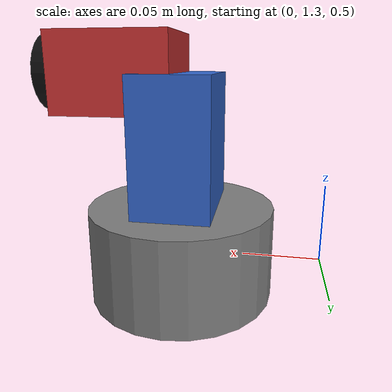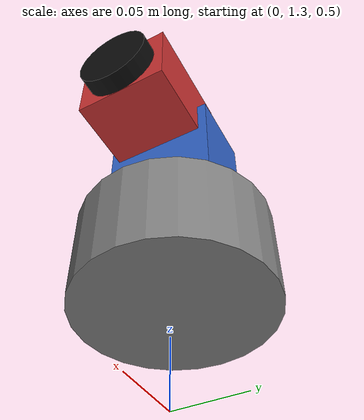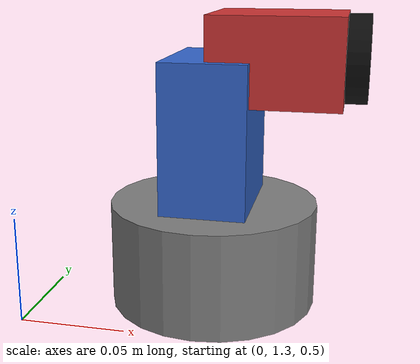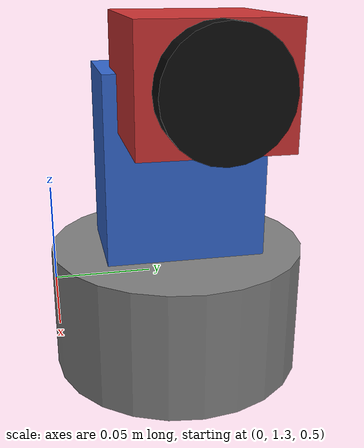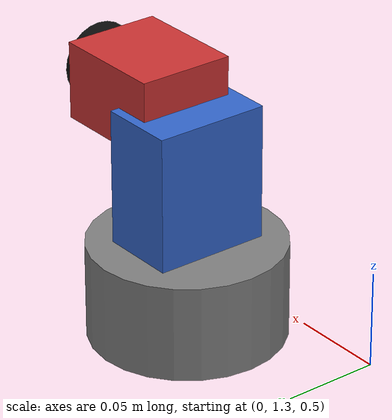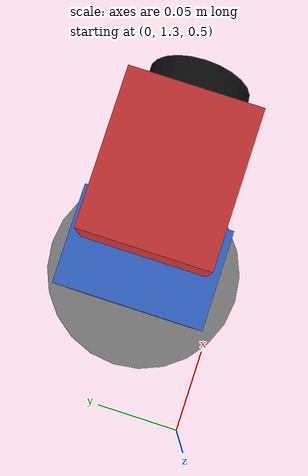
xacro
<?xml version="1.0"?>
<robot xmlns:xacro="http://www.ros.org/wiki/xacro"  name="robot">

    <!-- Include common materials and inertial macros -->
    <xacro:include filename="example_include.xacro" />
    <xacro:include filename="camera.xacro" />

    <!-- Empty world link -->
    <link name="world"></link>

    <!-- Fixed joint from world to base_link (like the example) -->
    <joint name="base_joint" type="fixed">
        <origin xyz="0.081932 1.347850 0.5" rpy="0 0 0"/>
        <parent link="world"/>
        <child link="base_link"/>
    </joint>

    <!--  PAN–TILT ROBOT BODY  -->

    <!-- Base Link -->
    <link name="base_link">
        <visual>
            <origin xyz="0 0 0.025" rpy="0 0 0"/>
            <geometry>
                <cylinder radius="0.05" length="0.05"/>
            </geometry>
            <material name="gray">
                <color rgba="0.5 0.5 0.5 1"/>
            </material>
        </visual>
        <collision>
            <origin xyz="0 0 0.025" rpy="0 0 0"/>
            <geometry>
                <cylinder radius="0.05" length="0.05"/>
            </geometry>
        </collision>
        <inertial>
            <origin xyz="0 0 0.025" rpy="0 0 0"/>
            <mass value="0.5"/>
            <inertia ixx="0.0005" ixy="0" ixz="0" iyy="0.0005" iyz="0" izz="0.000625"/>
        </inertial>
    </link>

    <!-- Pan Link -->
    <link name="pan_link">
        <visual>
            <origin xyz="0 0 0.035" rpy="0 0 0"/>
            <geometry>
                <box size="0.04 0.06 0.07"/>
            </geometry>
            <material name="blue">
                <color rgba="0.2 0.4 0.8 1"/>
            </material>
        </visual>
        <collision>
            <origin xyz="0 0 0.035" rpy="0 0 0"/>
            <geometry>
                <box size="0.04 0.06 0.07"/>
            </geometry>
        </collision>
        <inertial>
            <origin xyz="0 0 0.035" rpy="0 0 0"/>
            <mass value="0.3"/>
            <!-- inertia from your original URDF -->
            <inertia ixx="0.000155" ixy="0" ixz="0" iyy="0.000143" iyz="0.00004" izz="0.000155"/>
        </inertial>
    </link>

    <!-- Pan Joint -->
    <joint name="pan_joint" type="continuous">
        <parent link="base_link"/>
        <child link="pan_link"/>
        <origin xyz="0 0 0.05" rpy="0 0 0"/>
        <axis xyz="0 0 1"/>
        <limit lower="-3.14159" upper="3.14159" effort="10" velocity="2.0"/>
        <dynamics damping="0.5" friction="0.1"/>
    </joint>

    <!-- Tilt Link -->
    <link name="tilt_link">
        <visual>
            <origin xyz="0.03 0 0" rpy="0 0 0"/>
            <geometry>
                <box size="0.06 0.05 0.04"/>
            </geometry>
            <material name="red">
                <color rgba="0.8 0.2 0.2 1"/>
            </material>
        </visual>
        <collision>
            <origin xyz="0.03 0 0" rpy="0 0 0"/>
            <geometry>
                <box size="0.06 0.05 0.04"/>
            </geometry>
        </collision>
        <inertial>
            <origin xyz="0.03 0 0" rpy="0 0 0"/>
            <mass value="0.2"/>
            <inertia ixx="0.000027" ixy="0" ixz="0" iyy="0.000067" iyz="0" izz="0.000047"/>
        </inertial>
    </link>

    <!-- Tilt Joint -->
    <joint name="tilt_joint" type="revolute">
        <gravity>false</gravity>
        <parent link="pan_link"/>
        <child link="tilt_link"/>
        <origin xyz="0 0 0.07" rpy="0 0 0"/>
        <axis xyz="0 1 0"/>
        <limit lower="-1.57079" upper="1.57079" effort="10" velocity="2.0"/>
        <dynamics damping="0.5" friction="0.1"/>
    </joint>

    <!-- Gazebo-specific stuff (materials, plugins, depth camera, etc.) -->
    <xacro:include filename="example_gazebo.xacro" />

</robot>

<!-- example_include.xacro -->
<robot xmlns:xacro="http://www.ros.org/wiki/xacro" >

    <!-- This file is not a robot in and of itself, it just contains some useful tags that could be included in any robot -->

    <!-- Specify some colours -->

    <material name="white">
        <color rgba="1 1 1 1"/>
    </material>

    <material name="orange">
        <color rgba="1 0.3 0.1 1"/>
    </material>

    <material name="blue">
        <color rgba="0.2 0.2 1 1"/>
    </material>

    <material name="black">
        <color rgba="0.01 0.01 0.01 1"/>
    </material>

    <!-- Specify some standard inertial calculations https://en.wikipedia.org/wiki/List_of_moments_of_inertia -->
    <!-- These make use of xacro's mathematical functionality -->

    <xacro:macro name="inertial_sphere" params="mass radius *origin">
        <inertial>
            <xacro:insert_block name="origin"/>
            <mass value="${mass}" />
            <inertia ixx="${(2/5) * mass * (radius*radius)}" ixy="0.0" ixz="0.0"
                    iyy="${(2/5) * mass * (radius*radius)}" iyz="0.0"
                    izz="${(2/5) * mass * (radius*radius)}" />
        </inertial>
    </xacro:macro>

    <xacro:macro name="inertial_box" params="mass x y z *origin">
        <inertial>
            <xacro:insert_block name="origin"/>
            <mass value="${mass}" />
            <inertia ixx="${(1/12) * mass * (y*y+z*z)}" ixy="0.0" ixz="0.0"
                    iyy="${(1/12) * mass * (x*x+z*z)}" iyz="0.0"
                    izz="${(1/12) * mass * (x*x+y*y)}" />
        </inertial>
    </xacro:macro>

    <xacro:macro name="inertial_cylinder" params="mass length radius *origin">
        <inertial>
            <xacro:insert_block name="origin"/>
            <mass value="${mass}" />
            <inertia ixx="${(1/12) * mass * (3*radius*radius + length*length)}" ixy="0.0" ixz="0.0"
                    iyy="${(1/12) * mass * (3*radius*radius + length*length)}" iyz="0.0"
                    izz="${(1/2) * mass * (radius*radius)}" />
        </inertial>
    </xacro:macro>

</robot>

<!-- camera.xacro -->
<robot xmlns:xacro="http://www.ros.org/wiki/xacro"  name="robot">

    <link name="camera_link">
        <visual>
            <origin xyz="0 0 0" rpy="0 1.57 0"/>
            <geometry>
                <cylinder radius="0.02" length="0.01"/>
            </geometry>
            <material name="black">
                <color rgba="0.05 0.05 0.05 1"/>
            </material>
        </visual>
        <collision>
            <origin xyz="0 0 0.025" rpy="0 0 0"/>
            <geometry>
                <cylinder radius="0.025" length="0.025"/>
            </geometry>
        </collision>
        <inertial>
            <origin xyz="0 0 0" rpy="0 0 0"/>
            <mass value="0.0"/>
            <inertia ixx="0.0000729" ixy="0" ixz="0" iyy="0.0000729" iyz="0" izz="0.00015625"/>
        </inertial>
    </link>

        <!-- Fixed Camera Joint -->
    <joint name="camera_joint" type="fixed">
        <parent link="tilt_link"/>
        <child link="camera_link"/>
        <origin xyz="0.065 0 0" rpy="0 0 0"/>
    </joint>

    <gazebo reference="camera_link">
      <sensor name="camera" type="camera">
        <pose>0 0 0 0 0 0</pose>
        <visualize>true</visualize>
        <update_rate>30</update_rate>

        <camera>
          <horizontal_fov>1.0</horizontal_fov>
          <image>
            <width>640</width>
            <height>480</height>
            <format>R8G8B8</format>
          </image>
          <clip>
            <near>0.05</near>
            <far>100</far>
          </clip>
        </camera>

        <plugin name="camera_driver" filename="libgazebo_ros_camera.so">
          <frame_name>camera_link</frame_name>
        </plugin>
      </sensor>
    </gazebo>
</robot>
